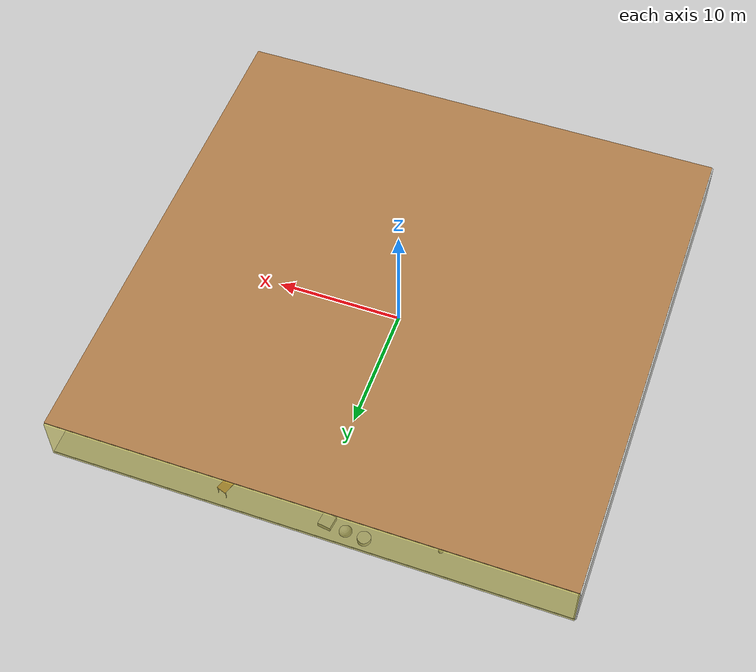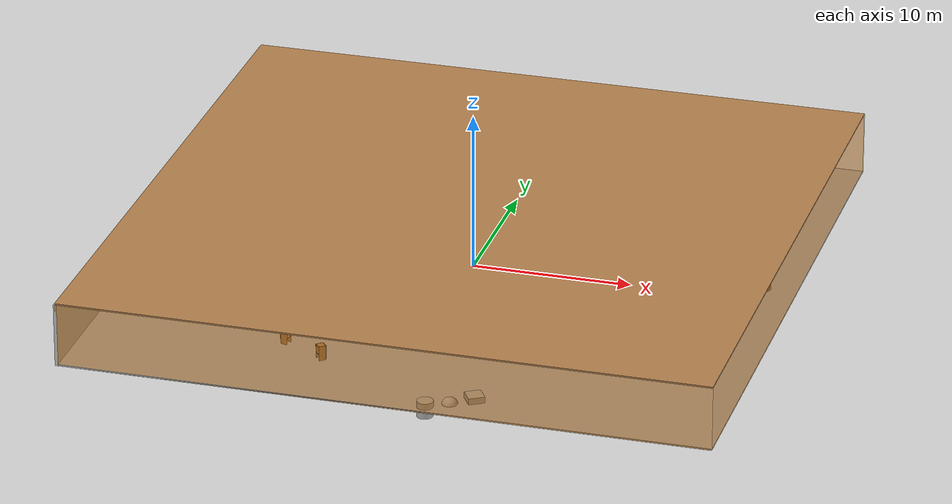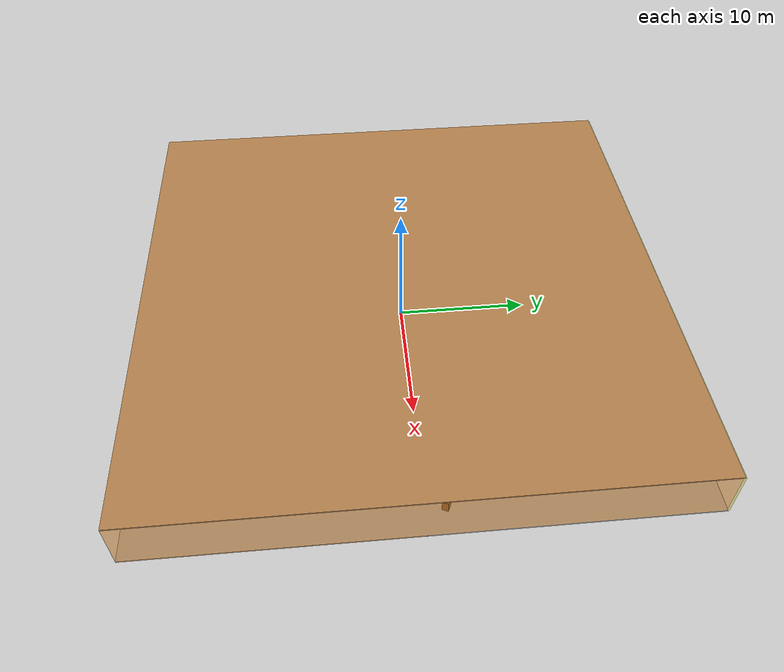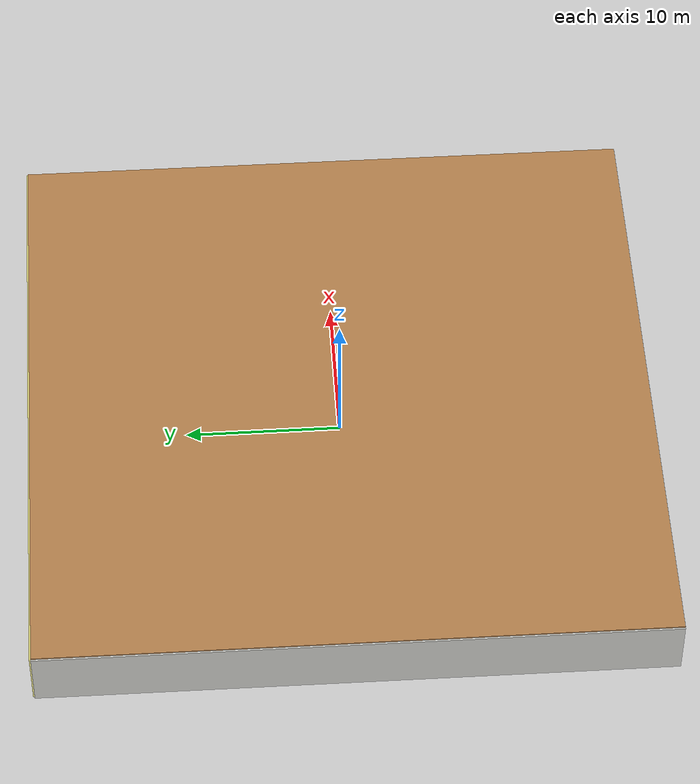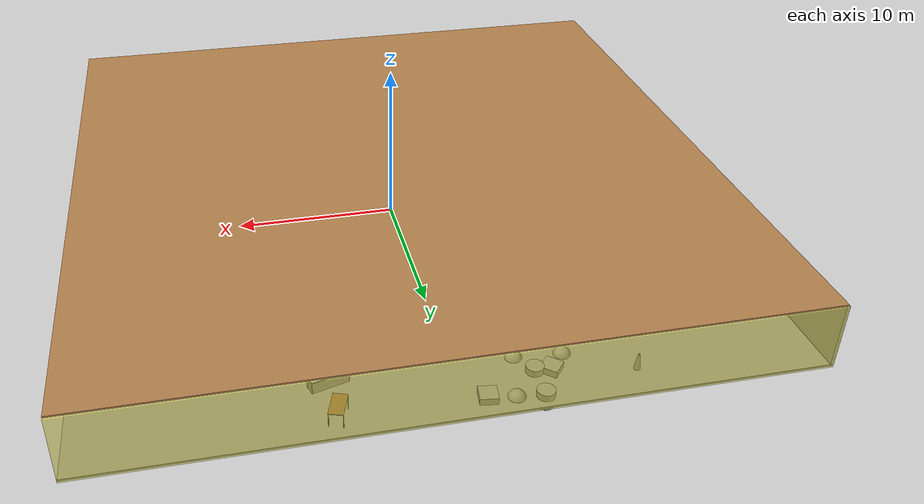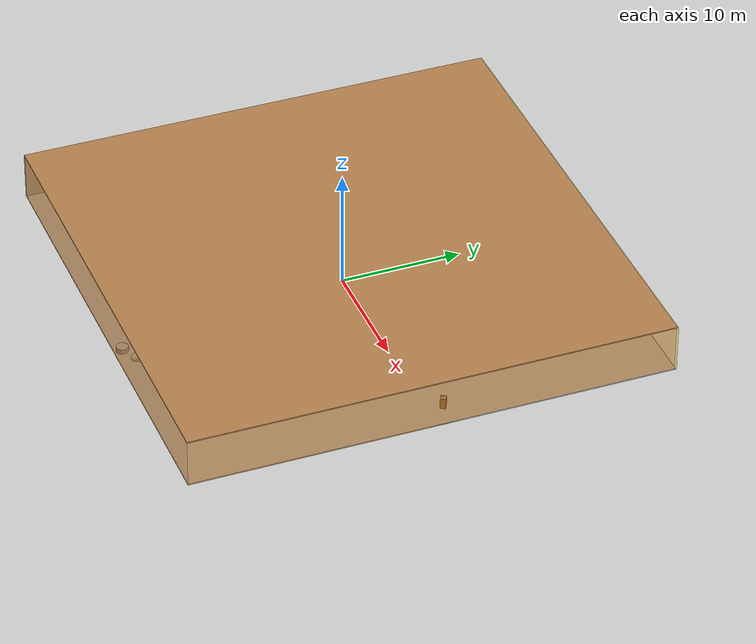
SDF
<sdf version="1.4">
 <world name="default">
  <physics type="ode">
   <max_step_size>0.001</max_step_size>
   <real_time_factor>1</real_time_factor>
   <real_time_update_rate>1000</real_time_update_rate>
   <gravity>0 0 -9.8</gravity>
  </physics>
  <scene><ambient>0.4 0.4 0.4 1</ambient><background>0.7 0.7 0.7 1</background><shadows>1</shadows></scene>
  <model name="Surrounding">
   <static>1</static>
   <link name="Ceiling">
    <collision name="Ceiling_Collision"><geometry><box><size>40 40 0.1</size></box></geometry></collision>
    <visual name="Ceiling_Visual">
     <geometry><box><size>40 40 0.1</size></box></geometry>
     <material>
      <script><uri>file://media/materials/scripts/gazebo.material</uri><name>Gazebo/WoodPallet</name></script>
     </material>
    </visual>
    <pose>0 0 4.05 0 0 0</pose>
   </link>
   <link name="Wall_South">
    <collision name="Wall_South_Collision">
     <geometry><box><size>40 0 4</size></box></geometry>
     <pose>0 0 2 0 -0 0</pose>
    </collision>
    <visual name="Wall_South_Visual">
     <pose>0 0 2 0 -0 0</pose>
     <geometry><box><size>40 0 4</size></box></geometry>
     <material>
      <script>
       <uri>file://media/materials/scripts/gazebo.material</uri>
       <name>Gazebo/OrangeTransparent</name>
      </script>
     </material>
    </visual>
    <velocity_decay><linear>0</linear><angular>0</angular></velocity_decay>
    <pose>0 -20 0 0 -0 0</pose>
   </link>
   <link name="Wall_East">
    <collision name="Wall_21_Collision">
     <geometry><box><size>40 0 4</size></box></geometry>
     <pose>0 0 2 0 -0 0</pose>
    </collision>
    <visual name="Wall_21_Visual">
     <pose>0 0 2 0 -0 0</pose>
     <geometry><box><size>40 0 4</size></box></geometry>
     <material>
      <script>
       <uri>file://media/materials/scripts/gazebo.material</uri>
       <name>Gazebo/OrangeTransparent</name>
      </script>
     </material>
    </visual>
    <velocity_decay><linear>0</linear><angular>0</angular></velocity_decay>
    <pose>20 0 0 0 -0 1.5708</pose>
   </link>
   <link name="Wall_North">
    <collision name="Wall_22_Collision">
     <geometry><box><size>40 0.2 4</size></box></geometry>
     <pose>0 0 2 0 -0 0</pose>
    </collision>
    <visual name="Wall_22_Visual">
     <pose>0 0 2 0 -0 0</pose>
     <geometry><box><size>40 0.2 4</size></box></geometry>
     <material>
      <script>
       <uri>file://media/materials/scripts/gazebo.material</uri>
       <name>Gazebo/YellowTransparent</name>
      </script>
     </material>
    </visual>
    <velocity_decay><linear>0</linear><angular>0</angular></velocity_decay>
    <pose>0 20 0 0 -0 0</pose>
   </link>
   <link name="Wall_West">
    <collision name="Wall_23_Collision">
     <geometry><box><size>40 0.2 4</size></box></geometry>
     <pose>0 0 2 0 -0 0</pose>
    </collision>
    <visual name="Wall_23_Visual">
     <pose>0 0 2 0 -0 0</pose>
     <geometry><box><size>40 0.2 4</size></box></geometry>
     <material>
      <script><uri>file://media/materials/scripts/gazebo.material</uri><name>Gazebo/CeilingTiled</name></script>
     </material>
    </visual>
    <velocity_decay><linear>0</linear><angular>0</angular></velocity_decay>
    <pose>-20 0 0 0 0 -1.5708</pose>
   </link>
   <link name="Ground_link">
    <collision name="collision">
     <pose>0 0 .05 0 -0 0</pose>
     <geometry><box><size>40 40 0.1</size></box></geometry>
    </collision>
    <visual name="visual">
     <pose>0 0 .05 0 -0 0</pose>
     <geometry><box><size>40 40 0.1</size></box></geometry>
     <material>
      <script><uri>file://media/materials/scripts/gazebo.material</uri><name>Gazebo/LightOff</name></script>
     </material>
    </visual>
   </link>
   <static>1</static>
  </model>
  <spherical_coordinates>
   <surface_model>EARTH_WGS84</surface_model>
   <latitude_deg>0</latitude_deg>
   <longitude_deg>0</longitude_deg>
   <elevation>0</elevation>
   <heading_deg>0</heading_deg>
  </spherical_coordinates>
  <light name="lightball_0" type="diffuse">
   <diffuse>0.8 0.8 0.8 1</diffuse>
   <specular>0.2 0.2 0.2 1</specular>
   <attenuation>
    <range>100</range>
    <constant>0.7</constant>
    <linear>0.01</linear>
    <quadratic>0.001</quadratic>
   </attenuation>
   <direction>-0.5 0.1 -0.9</direction>
   <pose>-12.6436342367 6.4897247681 3.53755140895 0 0 0</pose>
  </light>
  <light name="lightball_1" type="diffuse">
   <diffuse>0.8 0.8 0.8 1</diffuse>
   <specular>0.2 0.2 0.2 1</specular>
   <attenuation>
    <range>100</range>
    <constant>0.7</constant>
    <linear>0.01</linear>
    <quadratic>0.001</quadratic>
   </attenuation>
   <direction>-0.5 0.1 -0.9</direction>
   <pose>15.4234746482 -11.5236311398 3.47483371221 0 0 0</pose>
  </light>
  <light name="lightball_2" type="diffuse">
   <diffuse>0.8 0.8 0.8 1</diffuse>
   <specular>0.2 0.2 0.2 1</specular>
   <attenuation>
    <range>100</range>
    <constant>0.7</constant>
    <linear>0.01</linear>
    <quadratic>0.001</quadratic>
   </attenuation>
   <direction>-0.5 0.1 -0.9</direction>
   <pose>-11.4322602861 5.98139800501 1.02440514739 0 0 0</pose>
  </light>
  <light name="lightball_3" type="diffuse">
   <diffuse>0.8 0.8 0.8 1</diffuse>
   <specular>0.2 0.2 0.2 1</specular>
   <attenuation>
    <range>100</range>
    <constant>0.7</constant>
    <linear>0.01</linear>
    <quadratic>0.001</quadratic>
   </attenuation>
   <direction>-0.5 0.1 -0.9</direction>
   <pose>8.71201108683 -13.8706913396 2.94672195584 0 0 0</pose>
  </light>
  <light name="lightball_4" type="diffuse">
   <diffuse>0.8 0.8 0.8 1</diffuse>
   <specular>0.2 0.2 0.2 1</specular>
   <attenuation>
    <range>100</range>
    <constant>0.7</constant>
    <linear>0.01</linear>
    <quadratic>0.001</quadratic>
   </attenuation>
   <direction>-0.5 0.1 -0.9</direction>
   <pose>7.23172390088 16.825844113 3.75034618745 0 0 0</pose>
  </light>
  <light name="lightball_5" type="diffuse">
   <diffuse>0.8 0.8 0.8 1</diffuse>
   <specular>0.2 0.2 0.2 1</specular>
   <attenuation>
    <range>100</range>
    <constant>0.7</constant>
    <linear>0.01</linear>
    <quadratic>0.001</quadratic>
   </attenuation>
   <direction>-0.5 0.1 -0.9</direction>
   <pose>11.7946690382 4.7234683132 1.22728784389 0 0 0</pose>
  </light>
  <light name="lightball_6" type="diffuse">
   <diffuse>0.8 0.8 0.8 1</diffuse>
   <specular>0.2 0.2 0.2 1</specular>
   <attenuation>
    <range>100</range>
    <constant>0.7</constant>
    <linear>0.01</linear>
    <quadratic>0.001</quadratic>
   </attenuation>
   <direction>-0.5 0.1 -0.9</direction>
   <pose>9.34455983017 8.86625534612 2.43549898443 0 0 0</pose>
  </light>
  <light name="lightball_7" type="diffuse">
   <diffuse>0.8 0.8 0.8 1</diffuse>
   <specular>0.2 0.2 0.2 1</specular>
   <attenuation>
    <range>100</range>
    <constant>0.7</constant>
    <linear>0.01</linear>
    <quadratic>0.001</quadratic>
   </attenuation>
   <direction>-0.5 0.1 -0.9</direction>
   <pose>-14.1401067018 18.2156653366 0.877338987137 0 0 0</pose>
  </light>
  <light name="lightball_8" type="diffuse">
   <diffuse>0.8 0.8 0.8 1</diffuse>
   <specular>0.2 0.2 0.2 1</specular>
   <attenuation>
    <range>100</range>
    <constant>0.7</constant>
    <linear>0.01</linear>
    <quadratic>0.001</quadratic>
   </attenuation>
   <direction>-0.5 0.1 -0.9</direction>
   <pose>17.5673763864 -10.1705025628 1.55127634376 0 0 0</pose>
  </light>
  <light name="lightball_9" type="diffuse">
   <diffuse>0.8 0.8 0.8 1</diffuse>
   <specular>0.2 0.2 0.2 1</specular>
   <attenuation>
    <range>100</range>
    <constant>0.7</constant>
    <linear>0.01</linear>
    <quadratic>0.001</quadratic>
   </attenuation>
   <direction>-0.5 0.1 -0.9</direction>
   <pose>-14.2954396917 1.40404785121 1.82290605933 0 0 0</pose>
  </light>
  <include>
   <uri>model://robocup_3Dsim_goal</uri>
   <pose>-18.4511281323 13.0805036561 0 0 0 2.40084033312</pose>
  </include>
  <include>
   <uri>model://robocup_3Dsim_goal</uri>
   <pose>-10.3961973773 -5.23820574734 0 0 0 1.9480401595</pose>
  </include>
  <include><uri>model://cabinet</uri><pose>-7.79161680543 -13.4877514109 0 0 0 2.90055099603</pose></include>
  <include>
   <uri>model://construction_cone</uri>
   <pose>-9.62987832713 18.1925525978 0 0 0 2.59514961634</pose>
  </include>
  <include><uri>model://cabinet</uri><pose>-5.14429588567 -14.9751034986 0 0 0 0.715056959825</pose></include>
  <include><uri>model://cabinet</uri><pose>-6.41667199724 7.36299689638 0 0 0 2.44735328836</pose></include>
  <include>
   <uri>model://textured_shapes</uri>
   <pose>-6.11175436825 16.2530375015 0 0 0 2.4223981306</pose>
  </include>
  <include><uri>model://cabinet</uri><pose>-3.10131581023 -3.61931218082 0 0 0 2.26063143397</pose></include>
  <include><uri>model://table</uri><pose>-2.94884289164 6.7452700303 0 0 0 2.87378017996</pose></include>
  <include>
   <uri>model://textured_shapes</uri>
   <pose>-3.4421405328 16.0192571084 0 0 0 0.546317295168</pose>
  </include>
  <include>
   <uri>model://textured_shapes</uri>
   <pose>-2.71363883862 18.9817229756 0 0 0 1.43933077076</pose>
  </include>
  <include><uri>model://cabinet</uri><pose>0.827174920522 3.74305423708 0 0 0 0.903135531496</pose></include>
  <include>
   <uri>model://textured_shapes</uri>
   <pose>3.85217172723 -18.5433365813 0 0 0 2.11676189113</pose>
  </include>
  <include><uri>model://table</uri><pose>5.34063560885 2.9813247296 0 0 0 1.82874177666</pose></include>
  <include>
   <uri>model://robocup_3Dsim_goal</uri>
   <pose>5.66644342798 11.3670342972 0 0 0 1.72946394207</pose>
  </include>
  <include>
   <uri>model://robocup_3Dsim_goal</uri>
   <pose>6.69924601967 15.8461004409 0 0 0 1.84148164202</pose>
  </include>
  <include><uri>model://table</uri><pose>6.4983021161 18.6199917595 0 0 0 1.24531438411</pose></include>
  <include>
   <uri>model://construction_cone</uri>
   <pose>10.1879748795 -8.5092467314 0 0 0 1.75755068709</pose>
  </include>
  <include><uri>model://cabinet</uri><pose>8.34499801593 10.0443947685 0 0 0 1.68445608819</pose></include>
  <include>
   <uri>model://textured_shapes</uri>
   <pose>9.21738986856 13.4145949894 0 0 0 2.73981346158</pose>
  </include>
  <include>
   <uri>model://construction_cone</uri>
   <pose>12.9054574225 6.0750433966 0 0 0 2.19261307213</pose>
  </include>
  <include><uri>model://cabinet</uri><pose>18.0725944634 1.37413433802 0 0 0 1.12647092472</pose></include>
 </world>
</sdf>

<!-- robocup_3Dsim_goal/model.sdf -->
<sdf version="1.5">
  <model name="robocup_3d_goal">
    <static>true</static>
    <link name="left_post">
      <pose>0 1.05 0.45 0 0 0</pose>
      <collision name="collision">
        <geometry>
          <cylinder>
            <radius>0.05</radius>
            <length>0.9</length>
          </cylinder>
        </geometry>
      </collision>
      <visual name="visual">
        <geometry>
          <cylinder>
            <radius>0.05</radius>
            <length>0.9</length>
          </cylinder>
        </geometry>
        <material>
          <script>
            <uri>file://media/materials/scripts/gazebo.material</uri>
            <name>Gazebo/ZincYellow</name>
          </script>
        </material>
      </visual>
    </link>
    <link name="left_support_horiz_lower">
      <pose>0.30 1.05 0.01 0 0 0</pose>
      <collision name="collision">
        <geometry>
          <box>
            <size>0.50 0.02 0.02</size>
          </box>
        </geometry>
      </collision>
      <visual name="visual">
        <geometry>
          <box>
            <size>0.50 0.02 0.02</size>
          </box>
        </geometry>
        <material>
          <script>
            <uri>file://media/materials/scripts/gazebo.material</uri>
            <name>Gazebo/White</name>
          </script>
        </material>
      </visual>
    </link>
    <link name="left_support_horiz_upper">
      <pose>0.30 1.05 0.79 0 0 0</pose>
      <collision name="collision">
        <geometry>
          <box>
            <size>0.50 0.02 0.02</size>
          </box>
        </geometry>
      </collision>
      <visual name="visual">
        <geometry>
          <box>
            <size>0.50 0.02 0.02</size>
          </box>
        </geometry>
        <material>
          <script>
            <uri>file://media/materials/scripts/gazebo.material</uri>
            <name>Gazebo/White</name>
          </script>
        </material>
      </visual>
    </link>
    <link name="left_support_vertical">
      <pose>0.56 1.05 0.4 0 1.5708 0</pose>
      <collision name="collision">
        <geometry>
          <box>
            <size>0.80 0.02 0.02</size>
          </box>
        </geometry>
      </collision>
      <visual name="visual">
        <geometry>
          <box>
            <size>0.80 0.02 0.02</size>
          </box>
        </geometry>
        <material>
          <script>
            <uri>file://media/materials/scripts/gazebo.material</uri>
            <name>Gazebo/White</name>
          </script>
        </material>
      </visual>
    </link>
    <link name="right_support_horiz_lower">
      <pose>0.30 -1.05 0.01 0 0 0</pose>
      <collision name="collision">
        <geometry>
          <box>
            <size>0.50 0.02 0.02</size>
          </box>
        </geometry>
      </collision>
      <visual name="visual">
        <geometry>
          <box>
            <size>0.50 0.02 0.02</size>
          </box>
        </geometry>
        <material>
          <script>
            <uri>file://media/materials/scripts/gazebo.material</uri>
            <name>Gazebo/White</name>
          </script>
        </material>
      </visual>
    </link>
    <link name="right_support_horiz_upper">
      <pose>0.30 -1.05 0.79 0 0 0</pose>
      <collision name="collision">
        <geometry>
          <box>
            <size>0.50 0.02 0.02</size>
          </box>
        </geometry>
      </collision>
      <visual name="visual">
        <geometry>
          <box>
            <size>0.50 0.02 0.02</size>
          </box>
        </geometry>
        <material>
          <script>
            <uri>file://media/materials/scripts/gazebo.material</uri>
            <name>Gazebo/White</name>
          </script>
        </material>
      </visual>
    </link>
    <link name="right_support_vertical">
      <pose>0.56 -1.05 0.4 0 1.5708 0</pose>
      <collision name="collision">
        <geometry>
          <box>
            <size>0.80 0.02 0.02</size>
          </box>
        </geometry>
      </collision>
      <visual name="visual">
        <geometry>
          <box>
            <size>0.80 0.02 0.02</size>
          </box>
        </geometry>
        <material>
          <script>
            <uri>file://media/materials/scripts/gazebo.material</uri>
            <name>Gazebo/White</name>
          </script>
        </material>
      </visual>
    </link>
    <link name="center_support_horiz_lower">
      <pose>0.56 0 0.01 0 1.5708 0</pose>
      <collision name="collision">
        <geometry>
          <box>
            <size>0.02 2.08 0.02</size>
          </box>
        </geometry>
      </collision>
      <visual name="visual">
        <geometry>
          <box>
            <size>0.02 2.08 0.02</size>
          </box>
        </geometry>
        <material>
          <script>
            <uri>file://media/materials/scripts/gazebo.material</uri>
            <name>Gazebo/White</name>
          </script>
        </material>
      </visual>
    </link>
    <link name="center_support_horiz_upper">
      <pose>0.56 0 0.79 0 1.5708 0</pose>
      <collision name="collision">
        <geometry>
          <box>
            <size>0.02 2.08 0.02</size>
          </box>
        </geometry>
      </collision>
      <visual name="visual">
        <geometry>
          <box>
            <size>0.02 2.08 0.02</size>
          </box>
        </geometry>
        <material>
          <script>
            <uri>file://media/materials/scripts/gazebo.material</uri>
            <name>Gazebo/White</name>
          </script>
        </material>
      </visual>
    </link>
    <link name="right_post">
      <pose>0 -1.05 0.45 0 0 0</pose>
      <collision name="collision">
        <geometry>
          <cylinder>
            <radius>0.05</radius>
            <length>0.9</length>
          </cylinder>
        </geometry>
      </collision>
      <visual name="visual">
        <geometry>
          <cylinder>
            <radius>0.05</radius>
            <length>0.9</length>
          </cylinder>
        </geometry>
        <material>
          <script>
            <uri>file://media/materials/scripts/gazebo.material</uri>
            <name>Gazebo/ZincYellow</name>
          </script>
        </material>
      </visual>
    </link>
    <link name="crossbar">
      <pose>0 0 0.85 1.57 1.57 0</pose>
      <collision name="collision">
        <geometry>
          <cylinder>
            <radius>0.05</radius>
            <length>2.0</length>
          </cylinder>
        </geometry>
      </collision>
      <visual name="visual">
        <geometry>
          <cylinder>
            <radius>0.05</radius>
            <length>2.0</length>
          </cylinder>
        </geometry>
        <material>
          <script>
            <uri>file://media/materials/scripts/gazebo.material</uri>
            <name>Gazebo/ZincYellow</name>
          </script>
        </material>
      </visual>
    </link>
    <link name="center_net">
      <pose>0.56 0 0.40 0 0 0</pose>
      <collision name="collision">
        <geometry>
          <box>
            <size>0.01 2.1 0.80</size>
          </box>
        </geometry>
      </collision>
      <visual name="visual">
        <geometry>
          <box>
            <size>0.01 2.1 0.80</size>
          </box>
        </geometry>
        <material>
          <script>
            <uri>model://../model_source/models/robocup09_spl_field/materials/scripts/</uri>
            <uri>model://../model_source/models/robocup09_spl_field/materials/textures/</uri>
            <name>RoboCup/Net</name>
          </script>
        </material>
      </visual>
    </link>
    <link name="left_net">
      <pose>0.30 1.05 0.40 0 0 0</pose>
      <collision name="collision">
        <geometry>
          <box>
            <size>0.50 0.01 0.76</size>
          </box>
        </geometry>
      </collision>
      <visual name="visual">
        <geometry>
          <box>
            <size>0.50 0.01 0.76</size>
          </box>
        </geometry>
        <material>
          <script>
            <uri>model://../model_source/models/robocup09_spl_field/materials/scripts/</uri>
            <uri>model://../model_source/models/robocup09_spl_field/materials/textures/</uri>
            <name>RoboCup/Net</name>
          </script>
        </material>
      </visual>
    </link>
    <link name="right_net">
      <pose>0.30 -1.05 0.40 0 0 0</pose>
      <collision name="collision">
        <geometry>
          <box>
            <size>0.50 0.01 0.76</size>
          </box>
        </geometry>
      </collision>
      <visual name="visual">
        <geometry>
          <box>
            <size>0.50 0.01 0.76</size>
          </box>
        </geometry>
        <material>
          <script>
            <uri>model://../model_source/models/robocup09_spl_field/materials/scripts/</uri>
            <uri>model://../model_source/models/robocup09_spl_field/materials/textures/</uri>
            <name>RoboCup/Net</name>
          </script>
        </material>
      </visual>
    </link>
  </model>
</sdf>

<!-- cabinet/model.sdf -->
<sdf version="1.5">
  <model name="cabinet">
    <static>true</static>
    <link name="cabinet_bottom_plate">
      <inertial>
        <pose>0 0 -1 0 0 0</pose>
        <inertia>
          <ixx>2.050000</ixx>
          <ixy>0</ixy>
          <ixz>0</ixz>
          <iyy>2.050000</iyy>
          <iyz>0</iyz>
          <izz>2.050000</izz>
        </inertia>
        <mass>25.000000</mass>
      </inertial>
      <collision name="cabinet_bottom_plate_geom">
        <pose>0 0 0.010000 0 0 0</pose>
        <geometry>
          <box>
            <size>0.450000 0.450000 0.020000</size>
          </box>
        </geometry>
      </collision>
      <visual name="cabinet_bottom_plate_geom_visual">
        <pose>0 0 0.010000 0 0 0</pose>
        <geometry>
          <box>
            <size>0.450000 0.450000 0.020000</size>
          </box>
        </geometry>
        <material>
          <script>
            <uri>model://media/materials/scripts/gazebo.material</uri>
            <name>Gazebo/Wood</name>
          </script>
        </material>
      </visual>
      <collision name="cabinet_bottom_plate_geom_cabinet_back_plate">
        <pose>0.235000 0 0.510000 0 0 0</pose>
        <geometry>
          <box>
            <size>0.020000 0.450000 1.020000</size>
          </box>
        </geometry>
      </collision>
      <visual name="cabinet_bottom_plate_geom_cabinet_back_plate_visual">
        <pose>0.235000 0 0.510000 0 0 0</pose>
        <geometry>
          <box>
            <size>0.020000 0.450000 1.020000</size>
          </box>
        </geometry>
        <material>
          <script>
            <uri>model://media/materials/scripts/gazebo.material</uri>
            <name>Gazebo/Wood</name>
          </script>
        </material>
      </visual>
      <collision name="cabinet_bottom_plate_geom_cabinet_left_plate">
        <pose>0 0.235000 0.510000 0 0 0</pose>
        <geometry>
          <box>
            <size>0.450000 0.020000 1.020000</size>
          </box>
        </geometry>
      </collision>
      <visual name="cabinet_bottom_plate_geom_cabinet_left_plate_visual">
        <pose>0 0.235000 0.510000 0 0 0</pose>
        <geometry>
          <box>
            <size>0.450000 0.020000 1.020000</size>
          </box>
        </geometry>
        <material>
          <script>
            <uri>model://media/materials/scripts/gazebo.material</uri>
            <name>Gazebo/Wood</name>
          </script>
        </material>
      </visual>
      <collision name="cabinet_bottom_plate_geom_cabinet_middle_plate">
        <pose>0 0 0.510000 0 0 0</pose>
        <geometry>
          <box>
            <size>0.450000 0.450000 0.020000</size>
          </box>
        </geometry>
      </collision>
      <visual name="cabinet_bottom_plate_geom_cabinet_middle_plate_visual">
        <pose>0 0 0.510000 0 0 0</pose>
        <geometry>
          <box>
            <size>0.450000 0.450000 0.020000</size>
          </box>
        </geometry>
        <material>
          <script>
            <uri>model://media/materials/scripts/gazebo.material</uri>
            <name>Gazebo/Wood</name>
          </script>
        </material>
      </visual>
      <collision name="cabinet_bottom_plate_geom_cabinet_right_plate">
        <pose>0 -0.235000 0.510000 0 0 0</pose>
        <geometry>
          <box>
            <size>0.450000 0.020000 1.020000</size>
          </box>
        </geometry>
      </collision>
      <visual name="cabinet_bottom_plate_geom_cabinet_right_plate_visual">
        <pose>0 -0.235000 0.510000 0 0 0</pose>
        <geometry>
          <box>
            <size>0.450000 0.020000 1.020000</size>
          </box>
        </geometry>
        <material>
          <script>
            <uri>model://media/materials/scripts/gazebo.material</uri>
            <name>Gazebo/Wood</name>
          </script>
        </material>
      </visual>
      <collision name="cabinet_bottom_plate_geom_cabinet_top_plate">
        <pose>0 0 1.010000 0 0 0</pose>
        <geometry>
          <box>
            <size>0.450000 0.450000 0.020000</size>
          </box>
        </geometry>
      </collision>
      <visual name="cabinet_bottom_plate_geom_cabinet_top_plate_visual">
        <pose>0 0 1.010000 0 0 0</pose>
        <geometry>
          <box>
            <size>0.450000 0.450000 0.020000</size>
          </box>
        </geometry>
        <material>
          <script>
            <uri>model://media/materials/scripts/gazebo.material</uri>
            <name>Gazebo/Wood</name>
          </script>
        </material>
      </visual>
    </link>
  </model>
</sdf>

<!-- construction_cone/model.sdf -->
<sdf version="1.5">
  <model name="Construction Cone">
    <link name="link">
      <collision name="collision">
        <geometry>
          <mesh>
            <scale>10 10 10</scale>
            <uri>file://isr-testbed/construction_cone/meshes/construction_cone.dae</uri>
          </mesh>
        </geometry>
      </collision>
      <visual name="visual">
        <geometry>
          <mesh>
            <scale>10 10 10</scale>
            <uri>file://isr-testbed/construction_cone/meshes/construction_cone.dae</uri>
          </mesh>
        </geometry>
      </visual>
    </link>
  </model>
</sdf>

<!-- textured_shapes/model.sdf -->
<sdf version="1.6">
  <model name="textured_shapes">
    <pose>0 0 0.5 0 0 0</pose>
    <link name="box">
      <pose>0 -1.5 0 0 0 0</pose>
      <collision name="collision">
        <geometry>
          <box>
            <size>1 1 1</size>
          </box>
        </geometry>
      </collision>
      <visual name="visual">
        <geometry>
          <box>
            <size>1 1 1</size>
          </box>
        </geometry>
        <material>
          <script>
            <uri>model://../model_source/models/textured_shapes/materials/scripts</uri>
            <uri>model://../model_source/models/textured_shapes/materials/textures</uri>
            <name>TexturedShape/Squares</name>
          </script>
        </material>
      </visual>
    </link>
    <link name="sphere">
      <collision name="collision">
        <geometry>
          <sphere>
            <radius>0.5</radius>
          </sphere>
        </geometry>
      </collision>
      <visual name="visual">
        <geometry>
          <sphere>
            <radius>0.5</radius>
          </sphere>
        </geometry>
        <material>
          <script>
            <uri>model://../model_source/models/textured_shapes/materials/scripts</uri>
            <uri>model://../model_source/models/textured_shapes/materials/textures</uri>
            <name>TexturedShape/Squares</name>
          </script>
        </material>
      </visual>
    </link>
    <link name="cylinder">
      <pose>0 1.5 0 0 0 0</pose>
      <collision name="collision">
        <geometry>
          <cylinder>
            <radius>0.5</radius>
            <length>1</length>
          </cylinder>
        </geometry>
      </collision>
      <visual name="visual">
        <geometry>
          <cylinder>
            <radius>0.5</radius>
            <length>1</length>
          </cylinder>
        </geometry>
        <material>
          <script>
            <uri>model://../model_source/models/textured_shapes/materials/scripts</uri>
            <uri>model://../model_source/models/textured_shapes/materials/textures</uri>
            <name>TexturedShape/Squares</name>
          </script>
        </material>
      </visual>
    </link>
  </model>
</sdf>

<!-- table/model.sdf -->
<sdf version="1.5">
  <model name="table">
    <static>true</static>
    <link name="link">
      <collision name="surface">
        <pose>0 0 1.0 0 0 0</pose>
        <geometry>
          <box>
            <size>1.5 0.8 0.03</size>
          </box>
        </geometry>
        <surface>
          <friction>
            <ode>
              <mu>0.6</mu>
              <mu2>0.6</mu2>
            </ode>
          </friction>
        </surface>
      </collision>
      <visual name="visual1">
        <pose>0 0 1.0 0 0 0</pose>
        <geometry>
          <box>
            <size>1.5 0.8 0.03</size>
          </box>
        </geometry>
        <material>
          <script>
            <uri>model://media/materials/scripts/gazebo.material</uri>
            <name>Gazebo/Wood</name>
          </script>
        </material>
      </visual>
      <collision name="front_left_leg">
        <pose>0.68 0.38 0.5 0 0 0</pose>
        <geometry>
          <cylinder>
            <radius>0.02</radius>
            <length>1.0</length>
          </cylinder>
        </geometry>
      </collision>
      <visual name="front_left_leg">
        <pose>0.68 0.38 0.5 0 0 0</pose>
        <geometry>
          <cylinder>
            <radius>0.02</radius>
            <length>1.0</length>
          </cylinder>
        </geometry>
        <material>
          <script>
            <uri>model://media/materials/scripts/gazebo.material</uri>
            <name>Gazebo/Grey</name>
          </script>
        </material>
      </visual>
      <collision name="front_right_leg">
        <pose>0.68 -0.38 0.5 0 0 0</pose>
        <geometry>
          <cylinder>
            <radius>0.02</radius>
            <length>1.0</length>
          </cylinder>
        </geometry>
      </collision>
      <visual name="front_right_leg">
        <pose>0.68 -0.38 0.5 0 0 0</pose>
        <geometry>
          <cylinder>
            <radius>0.02</radius>
            <length>1.0</length>
          </cylinder>
        </geometry>
        <material>
          <script>
            <uri>model://media/materials/scripts/gazebo.material</uri>
            <name>Gazebo/Grey</name>
          </script>
        </material>
      </visual>
      <collision name="back_right_leg">
        <pose>-0.68 -0.38 0.5 0 0 0</pose>
        <geometry>
          <cylinder>
            <radius>0.02</radius>
            <length>1.0</length>
          </cylinder>
        </geometry>
      </collision>
      <visual name="back_right_leg">
        <pose>-0.68 -0.38 0.5 0 0 0</pose>
        <geometry>
          <cylinder>
            <radius>0.02</radius>
            <length>1.0</length>
          </cylinder>
        </geometry>
        <material>
          <script>
            <uri>model://media/materials/scripts/gazebo.material</uri>
            <name>Gazebo/Grey</name>
          </script>
        </material>
      </visual>
      <collision name="back_left_leg">
        <pose>-0.68 0.38 0.5 0 0 0</pose>
        <geometry>
          <cylinder>
            <radius>0.02</radius>
            <length>1.0</length>
          </cylinder>
        </geometry>
      </collision>
      <visual name="back_left_leg">
        <pose>-0.68 0.38 0.5 0 0 0</pose>
        <geometry>
          <cylinder>
            <radius>0.02</radius>
            <length>1.0</length>
          </cylinder>
        </geometry>
        <material>
          <script>
            <uri>model://media/materials/scripts/gazebo.material</uri>
            <name>Gazebo/Grey</name>
          </script>
        </material>
      </visual>
    </link>
  </model>
</sdf>
